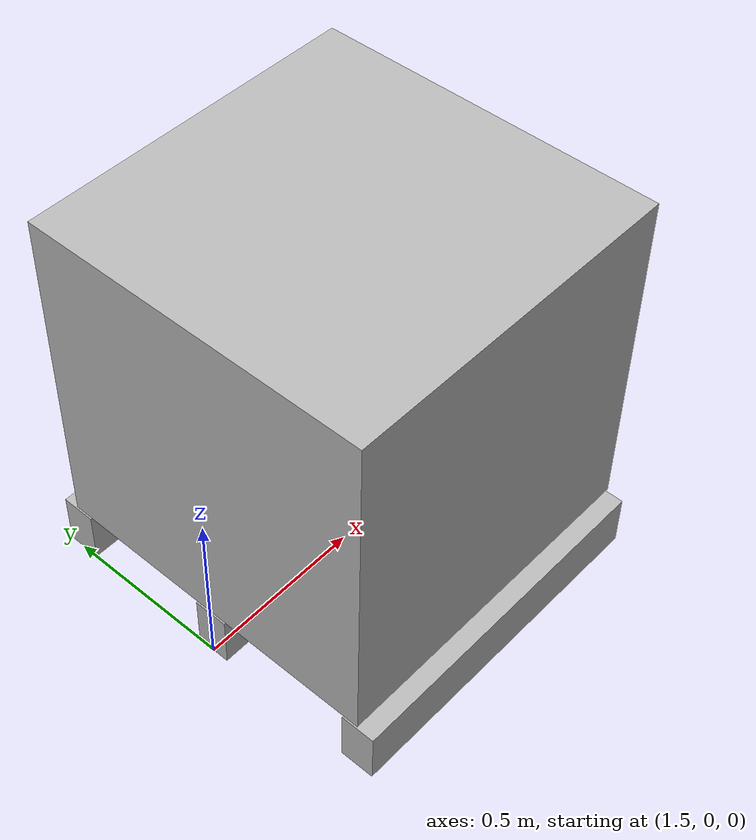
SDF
<?xml version='1.0'?>
<sdf version='1.4'>
  <model name="cube200kg">

    <self_collide>false</self_collide>
    <static>false</static>

    <!-- CUBE -->
    <link name='cube'>
            <pose>2 0 0 0 0 0</pose>

            <inertial>
              <mass>200.0</mass>
            </inertial>

            <collision name='cube_collision'>
            	<pose>0 0 0.67 0 0 0</pose>
              <geometry>
                <box>
                  <size>1 1 1</size>
                </box>
              </geometry>
            </collision>

            <visual name='cube_visual'>
            <pose>0 0 0.67 0 0 0</pose>
              <geometry>
                <box>
                  <size>1 1 1</size>
                </box>
              </geometry>
            </visual>

            <collision name='support1_collision'>
              <pose>0 0.5 0.08 0 0 0</pose>
              <geometry>
                <box>
                  <size>1 0.1 0.16</size>
                </box>
              </geometry>
            </collision>

            <visual name='support1_visual'>
              <pose>0 0.5 0.08 0 0 0</pose>
              <geometry>
                <box>
                  <size>1 0.1 0.16</size>
                </box>
              </geometry>
            </visual>

            <collision name='support2_collision'>
              <pose>0 -0.5 0.08 0 0 0</pose>
              <geometry>
                <box>
                  <size>1 0.1 0.16</size>
                </box>
              </geometry>
            </collision>

            <visual name='support2_visual'>
              <pose>0 -0.5 0.08 0 0 0</pose>
              <geometry>
                <box>
                  <size>1 0.1 0.16</size>
                </box>
              </geometry>
            </visual>
                        <collision name='support_mid_collision'>
              <pose>0 -0.5 0.08 0 0 0</pose>
              <geometry>
                <box>
                  <size>1 0.1 0.16</size>
                </box>
              </geometry>
            </collision>

            <visual name='support_mid_visual'>
              <pose>0 0 0.08 0 0 0</pose>
              <geometry>
                <box>
                  <size>1 0.1 0.16</size>
                </box>
              </geometry>
            </visual>
        </link>

  </model>
</sdf>
